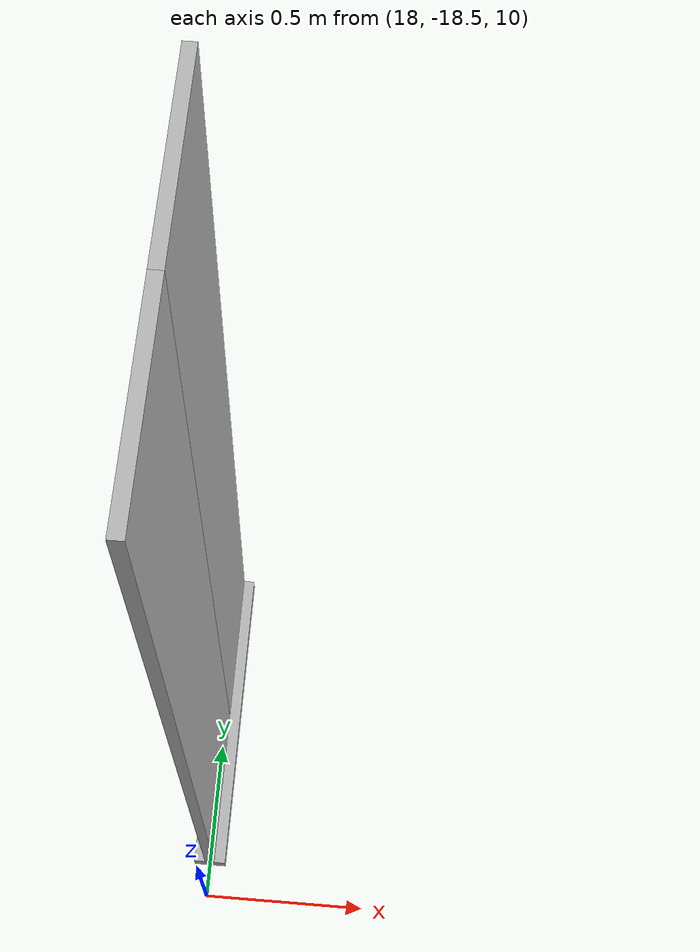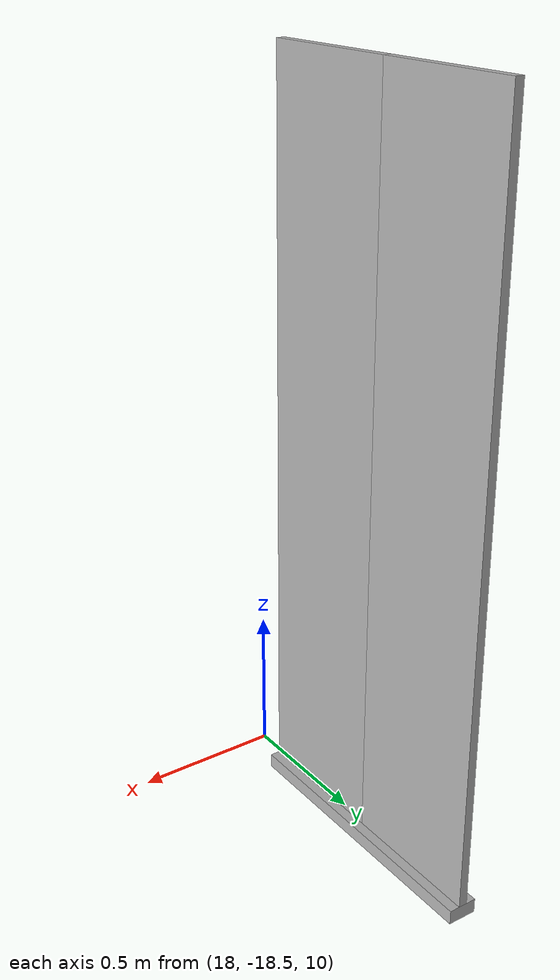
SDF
<sdf version="1.7">
 <world name="sim_world">
  <model name="ShaftDoor_lift1_planta1_lift_door">
   <pose>17.996956068418857 -17.889028570236448 10.0 0 0 4.71</pose>
   <link name="right_door">
    <pose>0.25 0 1.25 0 0 0</pose>
    <visual name="right_door_visual">
     <geometry><box><size>0.5 0.03 2.5</size></box></geometry>
     <material>
      <ambient>0.5 0.5 0.5 1</ambient>
      <diffuse>0.7 0.7 0.7 1</diffuse>
      <specular>0.6 0.6 0.6 1</specular>
      <emissive>0.1 0.1 0.1 1</emissive>
     </material>
    </visual>
    <collision name="right_door_collision">
     <geometry><box><size>0.5 0.03 2.5</size></box></geometry>
     <surface><contact><collide_bitmask>0x02</collide_bitmask></contact></surface>
    </collision>
   </link>
   <link name="left_door">
    <pose>-0.25 0 1.25 0 0 0</pose>
    <visual name="left_door_visual">
     <geometry><box><size>0.5 0.03 2.5</size></box></geometry>
     <material>
      <ambient>0.5 0.5 0.5 1</ambient>
      <diffuse>0.7 0.7 0.7 1</diffuse>
      <specular>0.6 0.6 0.6 1</specular>
      <emissive>0.1 0.1 0.1 1</emissive>
     </material>
    </visual>
    <collision name="left_door_collision">
     <geometry><box><size>0.5 0.03 2.5</size></box></geometry>
     <surface><contact><collide_bitmask>0x02</collide_bitmask></contact></surface>
    </collision>
   </link>
   <joint name="right_joint" type="prismatic">
    <parent>world</parent>
    <child>right_door</child>
    <axis><xyz>1 0 0</xyz><limit><lower>0</lower><upper>0.5</upper></limit></axis>
   </joint>
   <joint name="left_joint" type="prismatic">
    <parent>world</parent>
    <child>left_door</child>
    <axis><xyz>1 0 0</xyz><limit><lower>-0.5</lower><upper>0</upper></limit></axis>
   </joint>
   <link name="ramp">
    <pose>0 0 -0.025 0 0 0</pose>
    <visual name="ramp_visual">
     <geometry><box><size>1.0 0.1 0.05</size></box></geometry>
     <material>
      <ambient>0.5 0.5 0.5 1</ambient>
      <diffuse>0.7 0.7 0.7 1</diffuse>
      <specular>0.6 0.6 0.6 1</specular>
      <emissive>0.1 0.1 0.1 1</emissive>
     </material>
    </visual>
    <collision name="ramp_collision">
     <geometry><box><size>1.0 0.1 0.05</size></box></geometry>
     <surface><contact><collide_bitmask>0x02</collide_bitmask></contact></surface>
    </collision>
   </link>
   <joint name="ramp_joint" type="fixed"><parent>world</parent><child>ramp</child></joint>
   <plugin name="register_component" filename="libregister_component.so">
    <component name="Door">
     <v_max_door>0.3</v_max_door>
     <a_max_door>0.2</a_max_door>
     <a_nom_door>0.1</a_nom_door>
     <dx_min_door>0.0001</dx_min_door>
     <f_max_door>35.0</f_max_door>
     <door left_joint_name="left_joint" name="ShaftDoor_lift1_planta1_lift_door" right_joint_name="right_joint" type="DoubleSlidingDoor"/>
    </component>
   </plugin>
  </model>
 </world>
</sdf>
